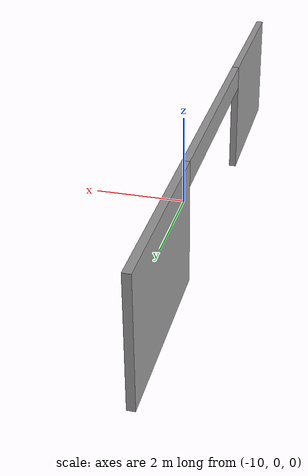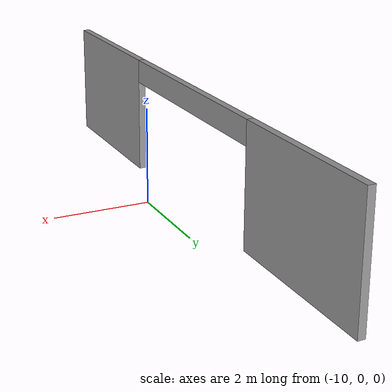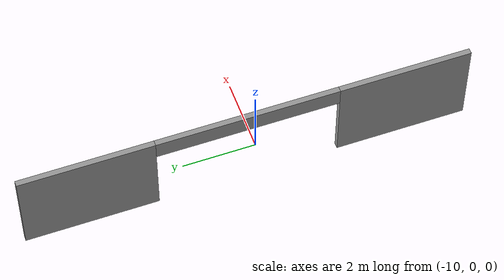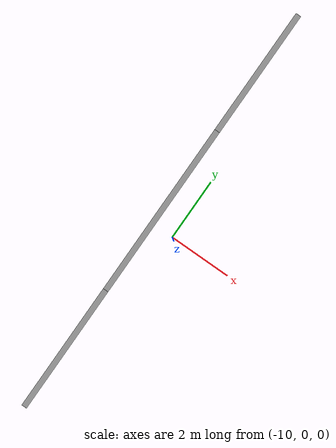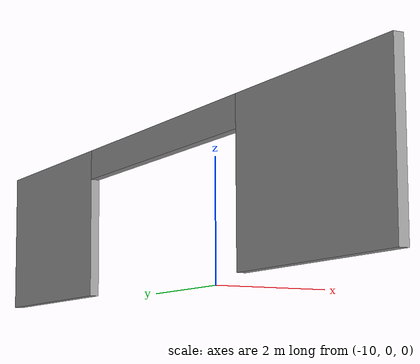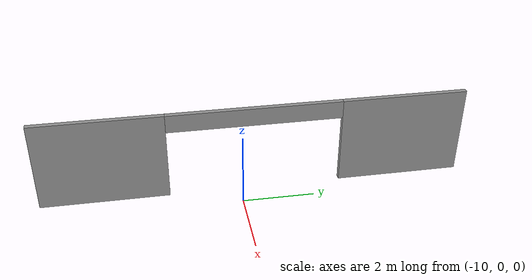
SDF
<?xml version='1.0'?>
<sdf version='1.6'>
  <model name='t2_1'>
    <pose frame=''>-10.7279 0.45928 0 0 -0 0</pose>
    <link name='Wall_0'>
      <pose frame=''>0 0 0 0 -0 1.5708</pose>
      <visual name='Wall_0_Visual_0'>
        <pose frame=''>-4.21611 0 1.25 0 -0 0</pose>
        <geometry>
          <box>
            <size>3.56778 0.15 2.5</size>
          </box>
        </geometry>
        <material>
          <script>
            <uri>file://media/materials/scripts/gazebo.material</uri>
            <name>Gazebo/Grey</name>
          </script>
          <ambient>1 1 1 1</ambient>
        </material>
        <meta>
          <layer>0</layer>
        </meta>
      </visual>
      <collision name='Wall_0_Collision_0'>
        <geometry>
          <box>
            <size>3.56778 0.15 2.5</size>
          </box>
        </geometry>
        <pose frame=''>-4.21611 0 1.25 0 -0 0</pose>
      </collision>
      <visual name='Wall_0_Visual_1'>
        <pose frame=''>4.22149 0 1.25 0 -0 0</pose>
        <geometry>
          <box>
            <size>3.55702 0.15 2.5</size>
          </box>
        </geometry>
        <material>
          <script>
            <uri>file://media/materials/scripts/gazebo.material</uri>
            <name>Gazebo/Grey</name>
          </script>
          <ambient>1 1 1 1</ambient>
        </material>
        <meta>
          <layer>0</layer>
        </meta>
      </visual>
      <collision name='Wall_0_Collision_1'>
        <geometry>
          <box>
            <size>3.55702 0.15 2.5</size>
          </box>
        </geometry>
        <pose frame=''>4.22149 0 1.25 0 -0 0</pose>
      </collision>
      <visual name='Wall_0_Visual_2'>
        <pose frame=''>0.005377 0 2.25 0 -0 0</pose>
        <geometry>
          <box>
            <size>4.8752 0.15 0.5</size>
          </box>
        </geometry>
        <material>
          <script>
            <uri>file://media/materials/scripts/gazebo.material</uri>
            <name>Gazebo/Grey</name>
          </script>
          <ambient>1 1 1 1</ambient>
        </material>
        <meta>
          <layer>0</layer>
        </meta>
      </visual>
      <collision name='Wall_0_Collision_2'>
        <geometry>
          <box>
            <size>4.8752 0.15 0.5</size>
          </box>
        </geometry>
        <pose frame=''>0.005377 0 2.25 0 -0 0</pose>
      </collision>
    </link>
    <static>1</static>
  </model>
</sdf>
